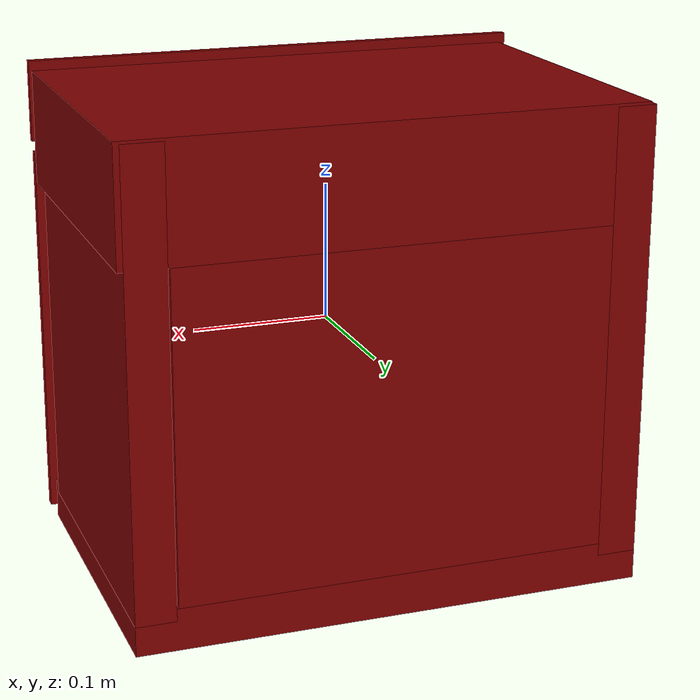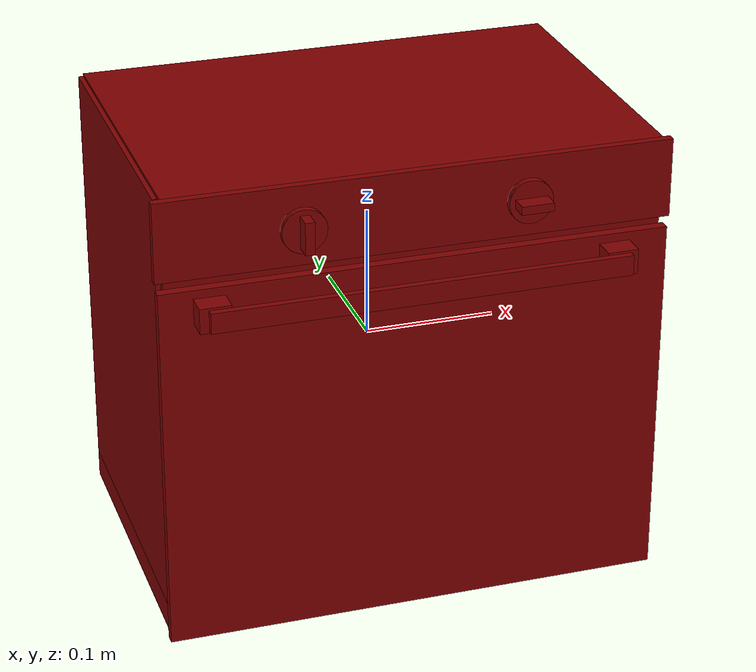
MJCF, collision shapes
<?xml version='1.0' encoding='UTF-8'?>
<mujoco model="model">
  <option timestep="0.002" gravity="0.0 0.0 -9.81"/>
  <compiler angle="radian"/>
  <asset>
    <mesh file="visuals/door.obj" name="door_vis"/>
    <mesh file="visuals/door_Clear.obj" name="door_Clear_vis"/>
    <mesh file="visuals/knob_temp.obj" name="knob_temp_vis"/>
    <mesh file="visuals/knob_time.obj" name="knob_time_vis"/>
    <mesh file="visuals/Body001.obj" name="Body001_vis"/>
    <mesh file="visuals/rack0.obj" name="rack0_vis"/>
    <texture file="visuals/T_BC001.png" name="Body001_material" type="2d"/>
    <material name="Body001_material" rgba="1 1 1 1.0" texture="Body001_material" shininess="2" specular="2"/>
    <texture file="visuals/T_BC001.png" name="door_material" type="2d"/>
    <material name="door_material" rgba="1 1 1 1.0" texture="door_material" shininess="2" specular="2"/>
    <texture file="visuals/T_BC001.png" name="door_Clear_material" type="2d"/>
    <material name="door_Clear_material" rgba="1 1 1 0.8741580843925476" texture="door_Clear_material" shininess="0.4472135901451111" specular="0.3103448502657381"/>
    <texture file="visuals/T_BC001.png" name="knob_temp_material" type="2d"/>
    <material name="knob_temp_material" rgba="1 1 1 1.0" texture="knob_temp_material" shininess="2" specular="2"/>
    <texture file="visuals/T_BC001.png" name="knob_time_material" type="2d"/>
    <material name="knob_time_material" rgba="1 1 1 1.0" texture="knob_time_material" shininess="2" specular="2"/>
    <texture file="visuals/T_BC001.png" name="rack0_material" type="2d"/>
    <material name="rack0_material" rgba="1 1 1 1.0" texture="rack0_material" shininess="10" specular="10"/>
  </asset>
  <default>
    <default class="visual">
      <geom conaffinity="0" contype="0" group="1" type="mesh"/>
    </default>
    <default class="collision">
      <geom group="0" rgba="0.5 0 0 0.5"/>
    </default>
    <default class="spawn">
      <geom group="0" rgba="1 1 1 0.5" contype="0" conaffinity="0"/>
      <site group="0" rgba="1 1 1 0.5"/>
    </default>
    <default class="region">
      <geom group="1" conaffinity="0" contype="0" rgba="0 1 0 0"/>
    </default>
  </default>
  <worldbody>
    <body>
      <body name="object">
        <geom mesh="Body001_vis" type="mesh" solimp="0.998 0.998 0.001" solref="0.001 1" friction="0.95 0.3 0.1" class="visual" material="Body001_material"/>
        <geom class="collision" type="box" pos="0.17095222 0.02483301 0.01093592" size="0.0143973333761096 0.1213981956243515 0.1630309820175171" quat="1.0 0.0 0.0 0.0"/>
        <geom class="collision" type="box" pos="0.00083018 0.02190004 -0.15822276" size="0.18451936542987823 0.12433108687400818 0.015281973406672478" quat="1.0 0.0 0.0 0.0"/>
        <geom class="collision" type="box" pos="-0.00000008 -0.11674512 0.15140904" size="0.1896449327468872 0.0031471436377614737 0.029807239770889282" quat="1.0 0.0 0.0 0.0"/>
        <geom class="collision" type="box" pos="-0.16938354 0.02483320 0.01093592" size="0.014305674470961094 0.12139808386564255 0.16303059458732605" quat="1.0 0.0 0.0 0.0"/>
        <geom class="collision" type="box" pos="0.00483747 0.02190034 0.13429353" size="0.1848074197769165 0.1243307814002037 0.04178180918097496" quat="1.0 0.0 0.0 0.0"/>
        <geom class="collision" type="box" pos="-0.00149675 0.14180840 -0.00000434" size="0.004422602243721485 0.15675640106201172 0.1630309820175171" quat="0.7071068286895752 0.0 -0.0 -0.7071067690849304"/>
        <geom class="collision" type="box" pos="-0.15346509 0.01026017 0.01307194" size="0.001742657506838441 0.10742674767971039 0.003695391584187746" quat="1.0 0.0 0.0 0.0"/>
        <geom class="collision" type="box" pos="-0.15346509 0.01026017 0.03565944" size="0.001742657506838441 0.10742674767971039 0.003695391584187746" quat="1.0 0.0 0.0 0.0"/>
        <geom class="collision" type="box" pos="-0.15346509 0.01026017 -0.03521962" size="0.001742657506838441 0.10742674767971039 0.003695391584187746" quat="1.0 0.0 0.0 0.0"/>
        <geom class="collision" type="box" pos="-0.15346509 0.01026017 -0.01180474" size="0.001742657506838441 0.10742674767971039 0.0024656422901898623" quat="1.0 0.0 0.0 0.0"/>
        <geom class="collision" type="box" pos="-0.15346509 0.01026017 -0.06023961" size="0.001742657506838441 0.10742674767971039 0.003695391584187746" quat="1.0 0.0 0.0 0.0"/>
        <geom class="collision" type="box" pos="-0.15346509 0.01026017 -0.08499154" size="0.001742657506838441 0.10742674767971039 0.003695391584187746" quat="1.0 0.0 0.0 0.0"/>
        <geom class="collision" type="box" pos="-0.15346509 0.01026017 -0.11000581" size="0.001742657506838441 0.10742674767971039 0.003695391584187746" quat="1.0 0.0 0.0 0.0"/>
        <geom class="collision" type="box" pos="0.15507945 0.01026017 0.01307194" size="0.001742657506838441 0.10742674767971039 0.003695391584187746" quat="1.0 0.0 0.0 0.0"/>
        <geom class="collision" type="box" pos="0.15507945 0.01026017 0.03565944" size="0.001742657506838441 0.10742674767971039 0.003695391584187746" quat="1.0 0.0 0.0 0.0"/>
        <geom class="collision" type="box" pos="0.15507945 0.01026017 -0.03521962" size="0.001742657506838441 0.10742674767971039 0.003695391584187746" quat="1.0 0.0 0.0 0.0"/>
        <geom class="collision" type="box" pos="0.15507945 0.01026017 -0.01180474" size="0.001742657506838441 0.10742674767971039 0.0024656422901898623" quat="1.0 0.0 0.0 0.0"/>
        <geom class="collision" type="box" pos="0.15507945 0.01026017 -0.06023961" size="0.001742657506838441 0.10742674767971039 0.003695391584187746" quat="1.0 0.0 0.0 0.0"/>
        <geom class="collision" type="box" pos="0.15507945 0.01026017 -0.08499154" size="0.001742657506838441 0.10742674767971039 0.003695391584187746" quat="1.0 0.0 0.0 0.0"/>
        <geom class="collision" type="box" pos="0.15507945 0.01026017 -0.11000581" size="0.001742657506838441 0.10742674767971039 0.003695391584187746" quat="1.0 0.0 0.0 0.0"/>
        <body name="door">
          <joint axis="1.0 0.0 0.0" pos="0.00030457 -0.1190885370589143 -0.16296436625637054" limited="true" name="door_joint" range="0.0 1.15" type="hinge" damping="1" frictionloss="1" armature="1" stiffness="2"/>
          <geom mesh="door_vis" type="mesh" solimp="0.998 0.998 0.001" solref="0.001 1" friction="0.95 0.3 0.1" class="visual" material="door_material"/>
          <geom class="collision" type="box" pos="0.00057935 -0.11769629 -0.02285677" size="0.15922340750694275 0.0016341737937182188 0.10935982316732407" quat="1.0 0.0 0.0 0.0"/>
          <geom class="collision" type="box" pos="0.00030457 -0.11613230 -0.02749864" size="0.18813085556030273 0.0038378213066607714 0.14075730741024017" quat="1.0 0.0 0.0 0.0"/>
          <geom class="collision" type="box" pos="-0.15143132 -0.12824442 0.09731123" size="0.011516321450471878 0.008796263486146927 0.009480617940425873" quat="1.0 0.0 0.0 0.0"/>
          <geom class="collision" type="box" pos="-0.00155603 -0.14101788 0.09796788" size="0.15497693419456482 0.002627516398206353 0.00769991846755147" quat="1.0 0.0 0.0 0.0" name="door_handle_main"/>
          <geom class="collision" type="box" pos="0.14800927 -0.12824442 0.09731123" size="0.011516321450471878 0.008796263486146927 0.009480617940425873" quat="1.0 0.0 0.0 0.0"/>
          <geom class="collision" type="box" pos="0.00030457 -0.11795051 -0.02749864" size="0.1810583621263504 0.0011380270589143038 0.13546572625637054" quat="1.0 0.0 0.0 0.0" name="door_main"/>
          <body name="door_Clear">
            <geom mesh="door_Clear_vis" type="mesh" solimp="0.998 0.998 0.001" solref="0.001 1" friction="0.95 0.3 0.1" class="visual" material="door_Clear_material"/>
            <geom class="collision" type="box" pos="0.00057935 -0.11769629 -0.02285677" size="0.15922340750694275 0.0016341737937182188 0.10935982316732407" quat="1.0 0.0 0.0 0.0"/>
          </body>
        </body>
        <body name="knob_temp">
          <joint axis="0.0 1.0 0.0" pos="0.08120844 -0.12877661 0.14925526" limited="true" name="knob_temp_joint" range="0.0 3.2288591161895095" type="hinge" damping="0.05" armature="1" frictionloss="0.75"/>
          <geom mesh="knob_temp_vis" type="mesh" solimp="0.998 0.998 0.001" solref="0.001 1" friction="0.95 0.3 0.1" class="visual" material="knob_temp_material"/>
          <geom class="collision" type="cylinder" pos="0.08104317 -0.12323257 0.14919923" size="0.0164551492780447 0.0026130429469048977" quat="0.7071067094802856 0.7071068286895752 -1.5700929612083792e-16 2.2148510003422914e-23" friction="100 0.5 0.01"/>
          <geom class="collision" type="box" pos="0.08104316 -0.13184001 0.14919923" size="0.0031734127551317215 0.00680219242349267 0.012094465084373951" quat="0.7071068286895752 -4.750302551315144e-08 -0.7071067094802856 -4.7503014855010406e-08" name="knob_temp_main" friction="100 0.5 0.01"/>
        </body>
        <body name="knob_time">
          <joint axis="0.0 1.0 0.0" pos="-0.08440112 -0.12877661 0.14919923" limited="true" name="knob_time_joint" range="0.0 3.14" type="hinge" damping="0.05" armature="1" frictionloss="0.75"/>
          <geom mesh="knob_time_vis" type="mesh" solimp="0.998 0.998 0.001" solref="0.001 1" friction="0.95 0.3 0.1" class="visual" material="knob_time_material"/>
          <geom class="collision" type="cylinder" pos="-0.08440112 -0.12323257 0.14919923" size="0.0164551492780447 0.0026130429469048977" quat="0.7071067094802856 0.7071068286895752 -1.5700929612083792e-16 2.2148510003422914e-23" friction="100 0.5 0.01"/>
          <geom class="collision" type="box" pos="-0.08440112 -0.13184001 0.14919923" size="0.003487643552944064 0.00680219242349267 0.012094465084373951" quat="1.0 0.0 0.0 0.0" name="knob_time_main" friction="100 0.5 0.01"/>
        </body>
        <body name="rack0">
          <geom class="region" name="reg_rack0" type="box" pos="0.001338480000000003 0.01171283 0.043949880000000004" size="0.14824067 0.10366027 0.04380163"/>
          <joint axis="0.0 -1.0 0.0" pos="0.00018701 0.01142298 -0.00681512" limited="true" name="rack0_joint" range="0.0 0.18" type="slide" damping="1" frictionloss="1" armature=".01" stiffness="0.05"/>
          <geom mesh="rack0_vis" type="mesh" solimp="0.998 0.998 0.001" solref="0.001 1" friction="0.95 0.3 0.1" class="visual" material="rack0_material"/>
          <geom class="collision" type="box" pos="0.00000000 0.01313050 -0.00698950" size="0.1499941647052765 0.1071794256567955 0.0012827718164771795" quat="1.0 0.0 0.0 0.0"/>
        </body>
        <geom class="region" name="reg_int" type="box" pos="0.0005484899999999987 0.012463585 -0.0247386" size="0.15024469000000001 0.119762015 0.11284521"/>
        <geom class="region" name="reg_main" type="box" pos="-7.99999999995249e-08 0.013130489999999995 -1.000000000861423e-08" size="0.19064493 0.13410063 0.18221627"/>
      </body>
    </body>
  </worldbody>
  <actuator>
    <motor name="door_joint_actuator" joint="door_joint" gear="50"/>
    <motor name="knob_temp_joint_actuator" joint="knob_temp_joint" gear="50"/>
    <motor name="knob_time_joint_actuator" joint="knob_time_joint" gear="50"/>
    <motor name="rack0_joint_actuator" joint="rack0_joint" gear="50"/>
  </actuator>
</mujoco>
